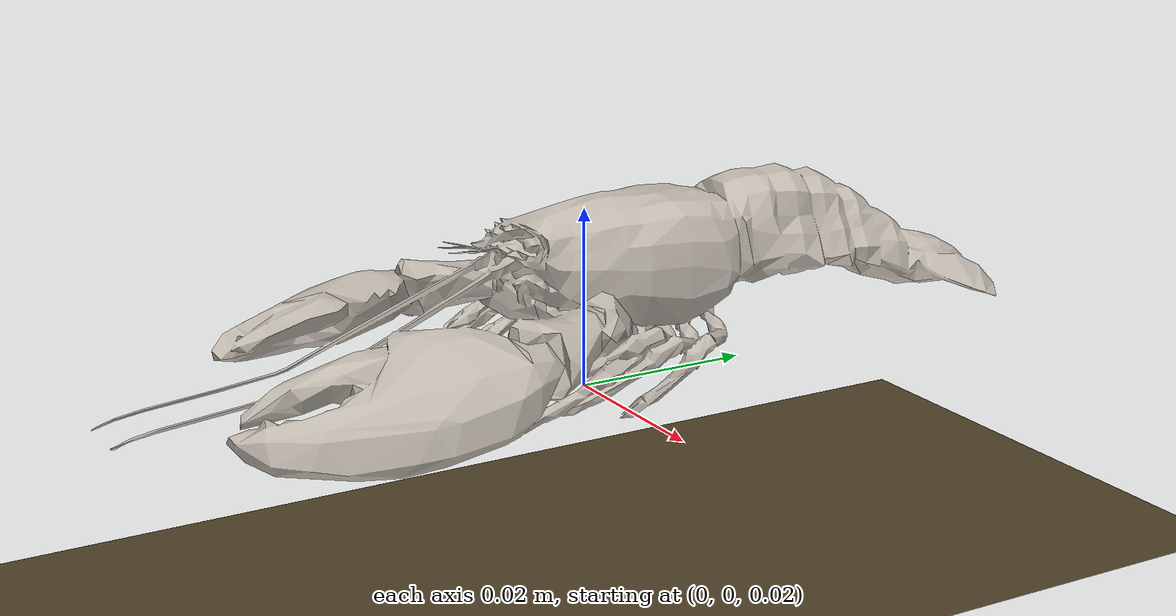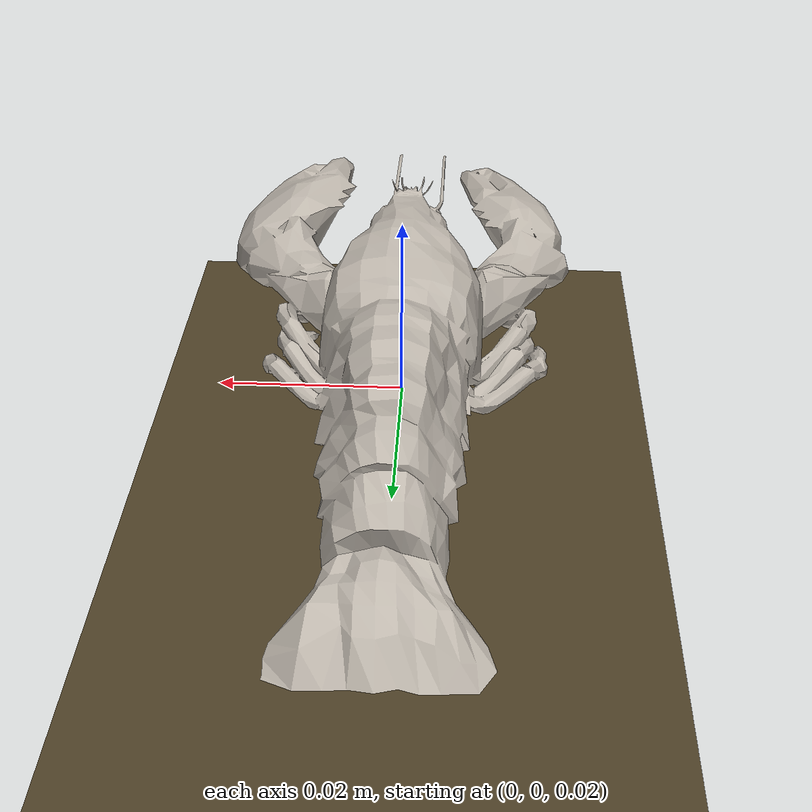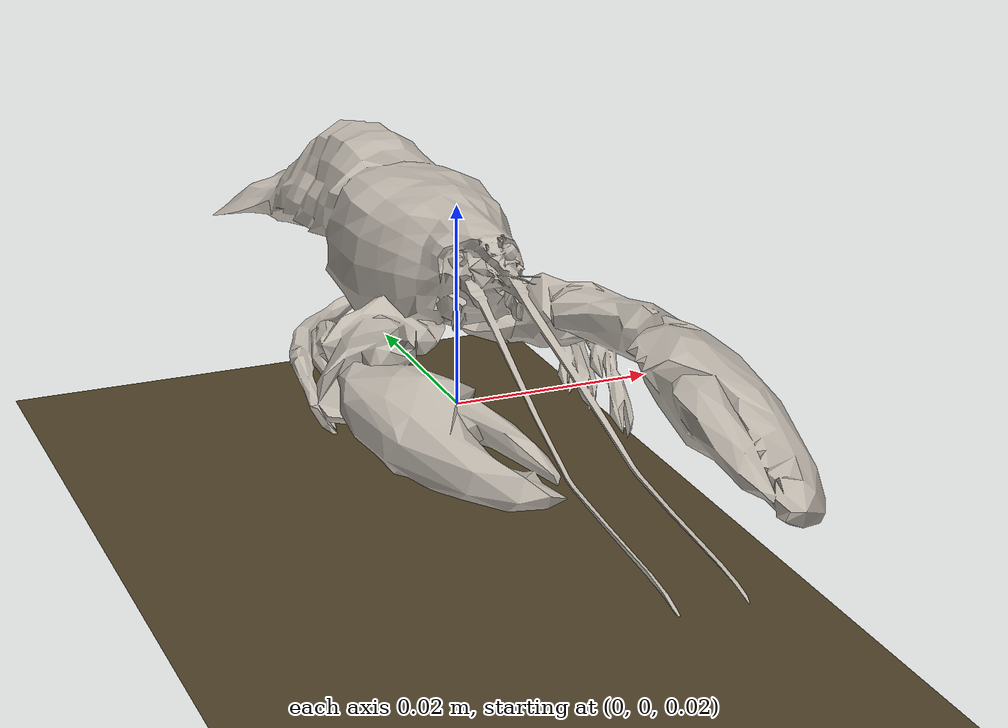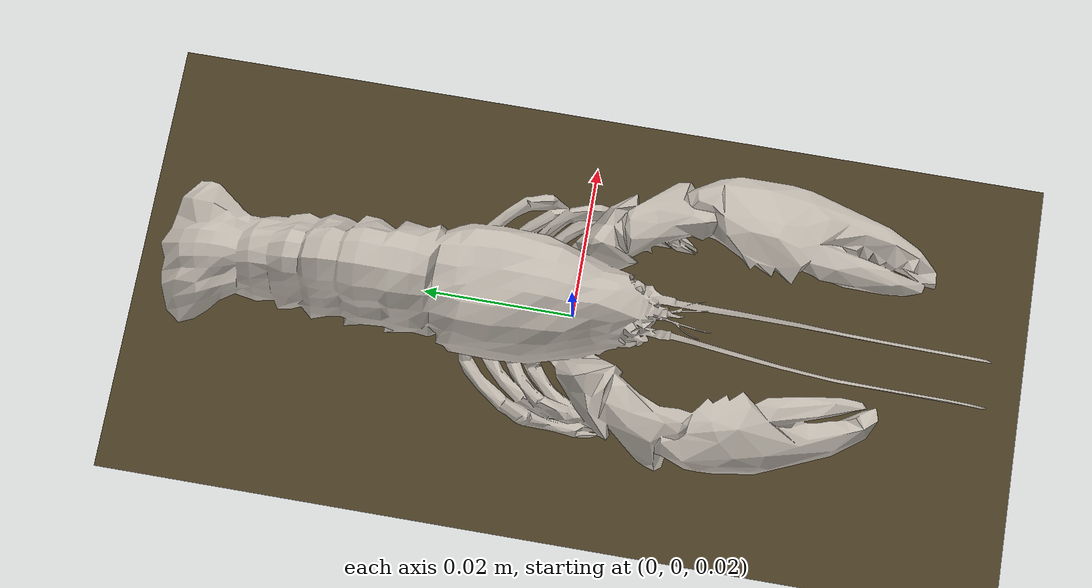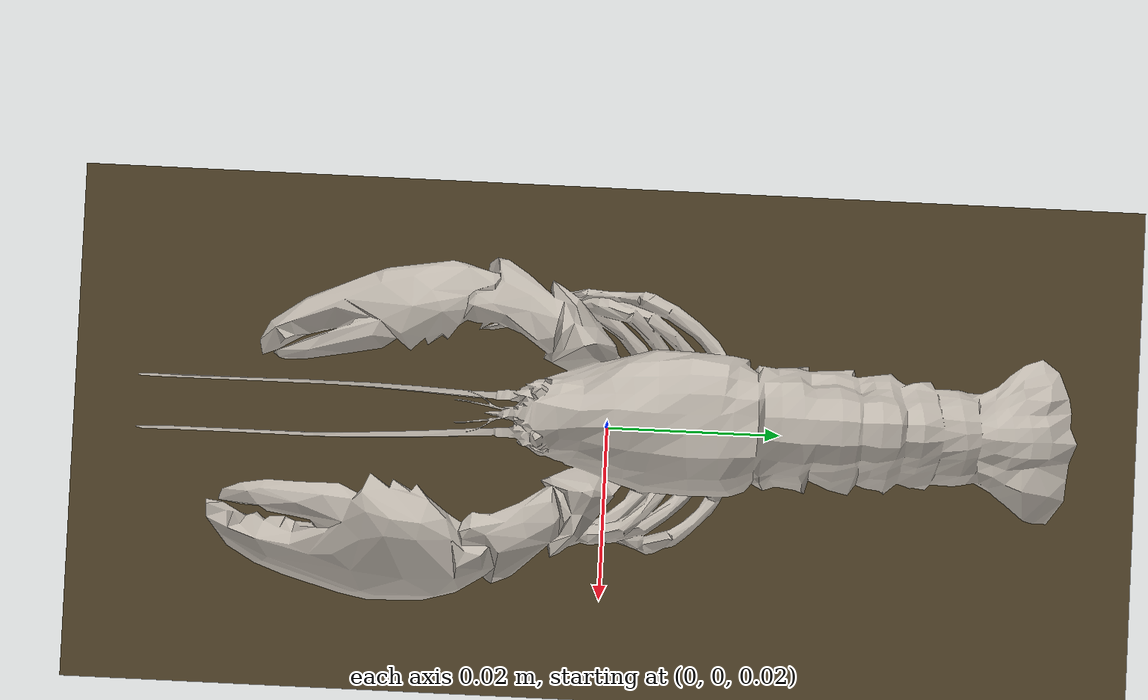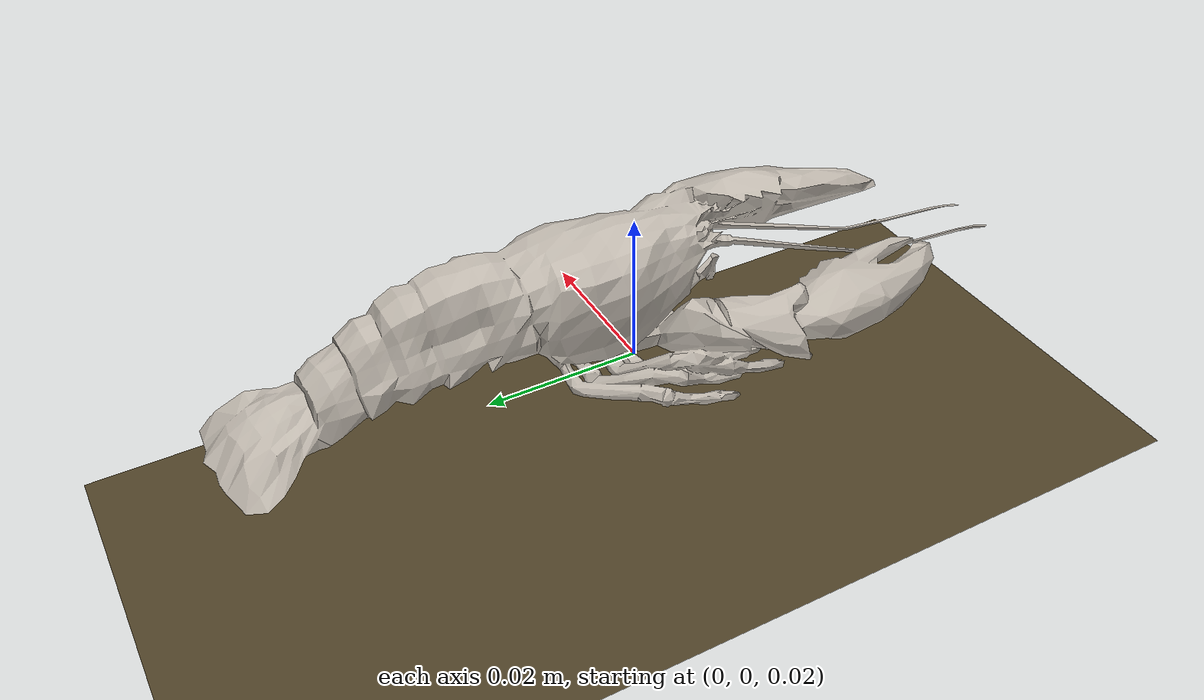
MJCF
<mujoco model="neurolobster">

  <compiler angle="radian" meshdir="." texturedir="."/>
  <option timestep="0.002" gravity="0 0 -9.81" viscosity="0.01"/>

  <default>
    <joint damping="0.1" armature="0.01"/>
    <geom friction="1.0 0.005 0.0001" condim="3"/>
  </default>

  <asset>
    <mesh name="lobster_body" file="lobster.obj" scale="0.003 0.003 0.003"/>
    <texture name="tex_lobster" type="2d" file="lambert1_albedo.png"/>
    <material name="mat_lobster" texture="tex_lobster" specular="0.5" shininess="0.3"/>
    <material name="mat_ground" rgba="0.3 0.25 0.15 1"/>
  </asset>

  <worldbody>
    <light pos="0 0 3" dir="0 0 -1" diffuse="1 1 1" specular="0.3 0.3 0.3"/>
    <light pos="1 1 2" dir="-1 -1 -1" diffuse="0.5 0.5 0.5"/>
    <geom name="floor" type="plane" size="5 5 0.1" material="mat_ground"/>

    <!-- Тело лобстера — только красивый mesh, физика через капсулу внутри -->
    <body name="torso" pos="0 0 0.02" >
      <freejoint name="root"/>

      <!-- Визуальный mesh лобстера -->
      <geom name="body_visual" type="mesh" mesh="lobster_body"
            material="mat_lobster" mass="0.8" contype="0" conaffinity="0"/>

      <!-- Невидимая физическая капсула тела для коллизий -->
      <geom name="body_col" type="capsule" size="0.03 0.06"
            pos="0 0 0" euler="0 1.5708 0"
            rgba="1 0 0 0" mass="0.2"/>

      <!-- Невидимые суставы ног — управляются CPG -->
      <!-- ЛЕВЫЕ НОГИ -->
      <body name="leg_L1" pos="-0.06 0.03 -0.01">
        <joint name="j_L1_hip" type="hinge" axis="0 0 1" range="-0.5 0.5"/>
        <geom type="sphere" size="0.002" rgba="0 0 0 0" mass="0.005"/>
        <body name="leg_L1_low" pos="0.03 0.02 -0.02">
          <joint name="j_L1_knee" type="hinge" axis="0 1 0" range="-0.6 0.1"/>
          <geom type="sphere" size="0.002" rgba="0 0 0 0" mass="0.003"/>
        </body>
      </body>

      <body name="leg_L2" pos="-0.02 0.035 -0.01">
        <joint name="j_L2_hip" type="hinge" axis="0 0 1" range="-0.5 0.5"/>
        <geom type="sphere" size="0.002" rgba="0 0 0 0" mass="0.005"/>
        <body name="leg_L2_low" pos="0.03 0.02 -0.02">
          <joint name="j_L2_knee" type="hinge" axis="0 1 0" range="-0.6 0.1"/>
          <geom type="sphere" size="0.002" rgba="0 0 0 0" mass="0.003"/>
        </body>
      </body>

      <body name="leg_L3" pos="0.02 0.035 -0.01">
        <joint name="j_L3_hip" type="hinge" axis="0 0 1" range="-0.5 0.5"/>
        <geom type="sphere" size="0.002" rgba="0 0 0 0" mass="0.005"/>
        <body name="leg_L3_low" pos="0.03 0.02 -0.02">
          <joint name="j_L3_knee" type="hinge" axis="0 1 0" range="-0.6 0.1"/>
          <geom type="sphere" size="0.002" rgba="0 0 0 0" mass="0.003"/>
        </body>
      </body>

      <body name="leg_L4" pos="0.06 0.03 -0.01">
        <joint name="j_L4_hip" type="hinge" axis="0 0 1" range="-0.5 0.5"/>
        <geom type="sphere" size="0.002" rgba="0 0 0 0" mass="0.005"/>
        <body name="leg_L4_low" pos="0.03 0.02 -0.02">
          <joint name="j_L4_knee" type="hinge" axis="0 1 0" range="-0.6 0.1"/>
          <geom type="sphere" size="0.002" rgba="0 0 0 0" mass="0.003"/>
        </body>
      </body>

      <!-- ПРАВЫЕ НОГИ -->
      <body name="leg_R1" pos="-0.06 -0.03 -0.01">
        <joint name="j_R1_hip" type="hinge" axis="0 0 1" range="-0.5 0.5"/>
        <geom type="sphere" size="0.002" rgba="0 0 0 0" mass="0.005"/>
        <body name="leg_R1_low" pos="0.03 -0.02 -0.02">
          <joint name="j_R1_knee" type="hinge" axis="0 1 0" range="-0.6 0.1"/>
          <geom type="sphere" size="0.002" rgba="0 0 0 0" mass="0.003"/>
        </body>
      </body>

      <body name="leg_R2" pos="-0.02 -0.035 -0.01">
        <joint name="j_R2_hip" type="hinge" axis="0 0 1" range="-0.5 0.5"/>
        <geom type="sphere" size="0.002" rgba="0 0 0 0" mass="0.005"/>
        <body name="leg_R2_low" pos="0.03 -0.02 -0.02">
          <joint name="j_R2_knee" type="hinge" axis="0 1 0" range="-0.6 0.1"/>
          <geom type="sphere" size="0.002" rgba="0 0 0 0" mass="0.003"/>
        </body>
      </body>

      <body name="leg_R3" pos="0.02 -0.035 -0.01">
        <joint name="j_R3_hip" type="hinge" axis="0 0 1" range="-0.5 0.5"/>
        <geom type="sphere" size="0.002" rgba="0 0 0 0" mass="0.005"/>
        <body name="leg_R3_low" pos="0.03 -0.02 -0.02">
          <joint name="j_R3_knee" type="hinge" axis="0 1 0" range="-0.6 0.1"/>
          <geom type="sphere" size="0.002" rgba="0 0 0 0" mass="0.003"/>
        </body>
      </body>

      <body name="leg_R4" pos="0.06 -0.03 -0.01">
        <joint name="j_R4_hip" type="hinge" axis="0 0 1" range="-0.5 0.5"/>
        <geom type="sphere" size="0.002" rgba="0 0 0 0" mass="0.005"/>
        <body name="leg_R4_low" pos="0.03 -0.02 -0.02">
          <joint name="j_R4_knee" type="hinge" axis="0 1 0" range="-0.6 0.1"/>
          <geom type="sphere" size="0.002" rgba="0 0 0 0" mass="0.003"/>
        </body>
      </body>

    </body>
  </worldbody>

  <actuator>
    <motor name="a_L1_hip" joint="j_L1_hip" gear="1" ctrllimited="true" ctrlrange="-1 1"/>
    <motor name="a_L2_hip" joint="j_L2_hip" gear="1" ctrllimited="true" ctrlrange="-1 1"/>
    <motor name="a_L3_hip" joint="j_L3_hip" gear="1" ctrllimited="true" ctrlrange="-1 1"/>
    <motor name="a_L4_hip" joint="j_L4_hip" gear="1" ctrllimited="true" ctrlrange="-1 1"/>
    <motor name="a_R1_hip" joint="j_R1_hip" gear="1" ctrllimited="true" ctrlrange="-1 1"/>
    <motor name="a_R2_hip" joint="j_R2_hip" gear="1" ctrllimited="true" ctrlrange="-1 1"/>
    <motor name="a_R3_hip" joint="j_R3_hip" gear="1" ctrllimited="true" ctrlrange="-1 1"/>
    <motor name="a_R4_hip" joint="j_R4_hip" gear="1" ctrllimited="true" ctrlrange="-1 1"/>
    <motor name="a_L1_knee" joint="j_L1_knee" gear="0.5" ctrllimited="true" ctrlrange="-1 1"/>
    <motor name="a_L2_knee" joint="j_L2_knee" gear="0.5" ctrllimited="true" ctrlrange="-1 1"/>
    <motor name="a_L3_knee" joint="j_L3_knee" gear="0.5" ctrllimited="true" ctrlrange="-1 1"/>
    <motor name="a_L4_knee" joint="j_L4_knee" gear="0.5" ctrllimited="true" ctrlrange="-1 1"/>
    <motor name="a_R1_knee" joint="j_R1_knee" gear="0.5" ctrllimited="true" ctrlrange="-1 1"/>
    <motor name="a_R2_knee" joint="j_R2_knee" gear="0.5" ctrllimited="true" ctrlrange="-1 1"/>
    <motor name="a_R3_knee" joint="j_R3_knee" gear="0.5" ctrllimited="true" ctrlrange="-1 1"/>
    <motor name="a_R4_knee" joint="j_R4_knee" gear="0.5" ctrllimited="true" ctrlrange="-1 1"/>
  </actuator>

  <sensor>
    <jointpos name="s_L1_hip" joint="j_L1_hip"/>
    <jointpos name="s_L2_hip" joint="j_L2_hip"/>
    <jointpos name="s_L3_hip" joint="j_L3_hip"/>
    <jointpos name="s_L4_hip" joint="j_L4_hip"/>
    <jointpos name="s_R1_hip" joint="j_R1_hip"/>
    <jointpos name="s_R2_hip" joint="j_R2_hip"/>
    <jointpos name="s_R3_hip" joint="j_R3_hip"/>
    <jointpos name="s_R4_hip" joint="j_R4_hip"/>
  </sensor>

</mujoco>
